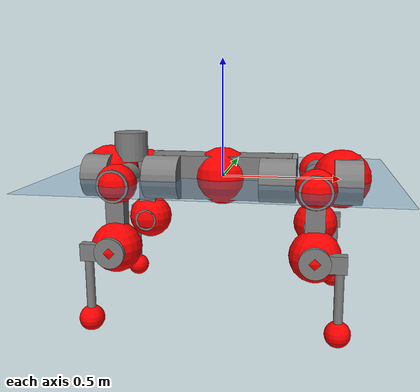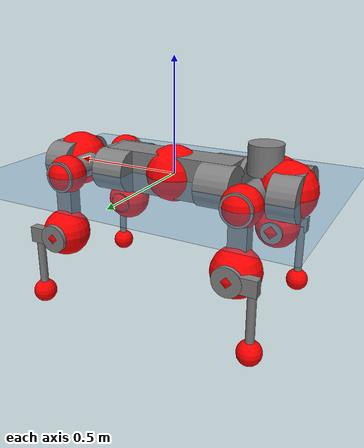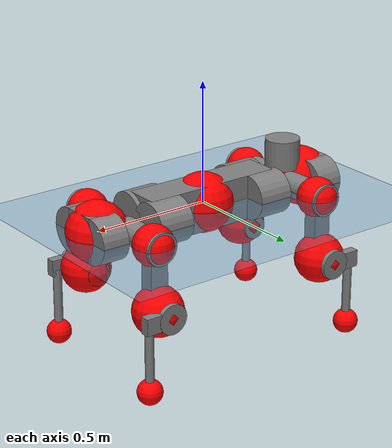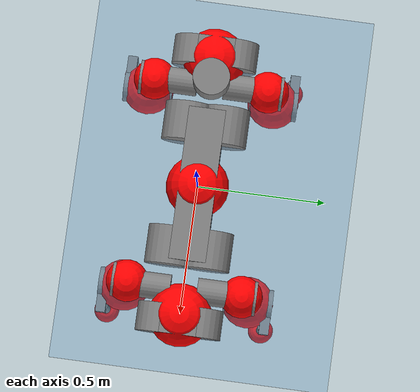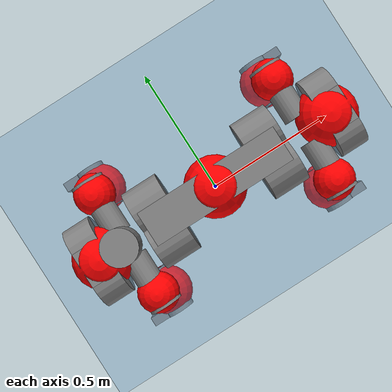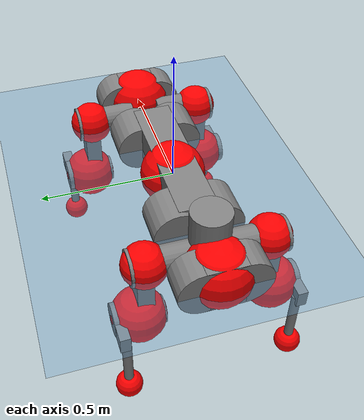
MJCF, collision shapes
<mujoco model="anymal_c">
  <compiler angle="radian" assetdir="assets" balanceinertia="true" inertiafromgeom="false"/>

  <option timestep="0.005" density="1.2" viscosity="2e-05"/>

  <size nkey="1"/>

  <visual>
    <quality shadowsize="8192"/>
    <map shadowclip="0.5"/>
  </visual>

  <default>
    <default class="/">
      <material specular="0" shininess="0.25"/>
      <geom contype="0" conaffinity="0" group="1" solref="-1000 -80"/>
      <site size="0.01 0.005 0.005" group="5"/>
      <general forcelimited="true" forcerange="-80 80" biastype="affine" gainprm="80" biasprm="0 -80 -2"/>
      <default class="anymal_c">
        <joint armature="0.01" damping="0.01" frictionloss="0.1"/>
        <default class="visual">
          <geom type="mesh" group="2"/>
          <default class="visual_zflip"/>
        </default>
        <default class="collision">
          <geom type="cylinder" group="3"/>
          <default class="foot">
            <geom size="0.03 0 0" type="sphere" condim="6" priority="1" friction="0.8 0.02 0.01" solimp="0.015 1 0.03"/>
          </default>
        </default>
      </default>
      <default class="reward_collision_sphere">
        <geom group="5" rgba="1 0 0 1"/>
      </default>
    </default>
  </default>

  <asset>
    <texture type="skybox" colorspace="auto" name="//unnamed_texture_0" builtin="gradient" rgb1="0.95 0.95 0.95" rgb2="0.95 0.95 0.95" width="100" height="600"/>
    <texture type="2d" colorspace="auto" name="texplane" builtin="checker" rgb1="0.345 0.575 0.748" rgb2="0.345 0.575 0.748" markrgb="1 1 1" width="512" height="512"/>
    <texture type="2d" colorspace="linear" name="base" file="base.png"/>
    <texture type="2d" colorspace="linear" name="top_shell" file="top_shell.png"/>
    <texture type="2d" colorspace="linear" name="bottom_shell" file="bottom_shell.png"/>
    <texture type="2d" colorspace="linear" name="remote" file="remote.png"/>
    <texture type="2d" colorspace="linear" name="hatch" file="hatch.png"/>
    <texture type="2d" colorspace="linear" name="handle" file="handle.png"/>
    <texture type="2d" colorspace="linear" name="face" file="face.png"/>
    <texture type="2d" colorspace="linear" name="battery" file="battery.png"/>
    <texture type="2d" colorspace="linear" name="lidar_cage" file="lidar_cage.png"/>
    <texture type="2d" colorspace="linear" name="depth_camera" file="depth_camera.png"/>
    <texture type="2d" colorspace="linear" name="wide_angle_camera" file="wide_angle_camera.png"/>
    <texture type="2d" colorspace="linear" name="lidar" file="lidar.png"/>
    <texture type="2d" colorspace="linear" name="drive" file="drive.png"/>
    <texture type="2d" colorspace="linear" name="hip_l" file="hip_l.png"/>
    <texture type="2d" colorspace="linear" name="shank_l" file="shank_l.png"/>
    <texture type="2d" colorspace="linear" name="foot" file="foot.png"/>
    <texture type="2d" colorspace="linear" name="thigh" file="thigh.png"/>
    <texture type="2d" colorspace="linear" name="shank_r" file="shank_r.png"/>
    <texture type="2d" colorspace="linear" name="hip_r" file="hip_r.png"/>
    <material name="MatPlane" class="/" texture="texplane" texuniform="true" texrepeat="2 2" specular="0.9" shininess="0.5"/>
    <material name="black_plastic" class="/" rgba="0.007 0.007 0.007 1"/>
    <material name="green" class="/" rgba="0.052 0.178 0.033 1"/>
    <material name="red" class="/" rgba="0.178 0.006 0.005 1"/>
    <material name="yellow" class="/" rgba="0.178 0.119 0.006 1"/>
    <material name="lwl" class="/" rgba="0.8 0.8 0.8 1"/>
    <material name="base" class="/" texture="base"/>
    <material name="top_shell" class="/" texture="top_shell"/>
    <material name="bottom_shell" class="/" texture="bottom_shell"/>
    <material name="hip_l" class="/" texture="hip_l"/>
    <material name="thigh" class="/" texture="thigh"/>
    <material name="shank_l" class="/" texture="shank_l"/>
    <material name="foot" class="/" texture="foot"/>
    <material name="hip_r" class="/" texture="hip_r"/>
    <material name="shank" class="/" texture="shank_r"/>
    <material name="hatch" class="/" texture="hatch"/>
    <material name="remote" class="/" texture="remote"/>
    <material name="handle" class="/" texture="handle"/>
    <material name="face" class="/" texture="face"/>
    <material name="depth_camera" class="/" texture="depth_camera"/>
    <material name="wide_angle_camera" class="/" texture="wide_angle_camera"/>
    <material name="battery" class="/" texture="battery"/>
    <material name="lidar_cage" class="/" texture="lidar_cage"/>
    <material name="lidar" class="/" texture="lidar"/>
    <material name="drive" class="/" texture="drive"/>
    <mesh name="base_0" class="/" file="base_0.obj"/>
    <mesh name="base_1" class="/" file="base_1.obj"/>
    <mesh name="base_2" class="/" file="base_2.obj"/>
    <mesh name="base_3" class="/" file="base_3.obj"/>
    <mesh name="base_4" class="/" file="base_4.obj"/>
    <mesh name="base_5" class="/" file="base_5.obj"/>
    <mesh name="top_shell" class="/" file="top_shell.obj"/>
    <mesh name="bottom_shell" class="/" file="bottom_shell.obj"/>
    <mesh name="remote" class="/" file="remote.obj"/>
    <mesh name="handle" class="/" file="handle.obj"/>
    <mesh name="face" class="/" file="face.obj"/>
    <mesh name="wide_angle_camera" class="/" file="wide_angle_camera.obj"/>
    <mesh name="depth_camera" class="/" file="depth_camera.obj"/>
    <mesh name="battery" class="/" file="battery.obj"/>
    <mesh name="lidar_cage" class="/" file="lidar_cage.obj"/>
    <mesh name="lidar" class="/" file="lidar.obj"/>
    <mesh name="drive" class="/" file="drive.obj"/>
    <mesh name="hip_l" class="/" file="hip_l.obj"/>
    <mesh name="thigh" class="/" file="thigh.obj"/>
    <mesh name="shank_l" class="/" file="shank_l.obj"/>
    <mesh name="foot" class="/" file="foot.obj"/>
    <mesh name="hip_r" class="/" file="hip_r.obj"/>
    <mesh name="hatch" class="/" file="hatch.obj"/>
    <mesh name="shank_r" class="/" file="shank_r.obj"/>
  </asset>

  <worldbody>
    <geom name="floor" class="/" size="100 100 0.125" type="plane" group="0" material="MatPlane"/>
    <light name="toplight_shadow" class="/" pos="0 0 5" dir="0.0990148 0.0990148 -0.990148" type="directional" ambient="0.04 0.04 0.04" diffuse="0.55 0.55 0.55" specular="0.12 0.12 0.12"/>
    <light name="toplight_fill" class="/" pos="0 0 5" dir="0.0990148 0.0990148 -0.990148" type="directional" castshadow="false" ambient="0.04 0.04 0.04" diffuse="0.3 0.3 0.3" specular="0.08 0.08 0.08"/>
    <body name="trunk" childclass="anymal_c" pos="0.000148036 3.39347e-05 0.00196601" quat="1 -0.000366635 -0.000213666 6.16918e-05">
      <inertial pos="0.00415768 -0.00545317 0.0424656" quat="0.501036 0.500306 0.499505 0.499151" mass="21.3546" diaginertia="1.08406 0.845098 0.129575"/>
      <joint name="//unnamed_joint_0" type="free" armature="0" damping="0" frictionloss="0"/>
      <geom name="//unnamed_geom_1" class="visual" material="green" mesh="base_0"/>
      <geom name="//unnamed_geom_2" class="visual" material="yellow" mesh="base_1"/>
      <geom name="//unnamed_geom_3" class="visual" material="red" mesh="base_2"/>
      <geom name="//unnamed_geom_4" class="visual" material="black_plastic" mesh="base_3"/>
      <geom name="//unnamed_geom_5" class="visual" material="lwl" mesh="base_4"/>
      <geom name="//unnamed_geom_6" class="visual" material="base" mesh="base_5"/>
      <geom name="trunk_1" class="collision" size="0.29849 0.0720494 0.0926349" type="box"/>
      <geom name="trunk_2" class="collision" size="0.0926349 0.0746226" pos="0.244467 0.0741092 0" quat="0.707107 0 0.707107 0"/>
      <geom name="trunk_3" class="collision" size="0.0926349 0.0746226" pos="-0.244467 0.0741092 0" quat="0.707107 0 0.707107 0"/>
      <geom name="trunk_4" class="collision" size="0.0926349 0.0746226" pos="0.244467 -0.0741092 0" quat="0.707107 0 0.707107 0"/>
      <geom name="trunk_5" class="collision" size="0.0926349 0.0746226" pos="-0.244467 -0.0741092 0" quat="0.707107 0 0.707107 0"/>
      <geom name="//unnamed_geom_12" class="visual" material="top_shell" mesh="top_shell"/>
      <geom name="//unnamed_geom_13" class="visual" material="bottom_shell" mesh="bottom_shell"/>
      <geom name="//unnamed_geom_14" class="visual" material="remote" mesh="remote"/>
      <geom name="//unnamed_geom_15" class="visual" material="handle" mesh="handle"/>
      <geom name="//unnamed_geom_16" class="visual" pos="0.465891 0 0" quat="1 0 0 0" material="face" mesh="face"/>
      <geom name="trunk_6" class="collision" size="0.0566102 0.0720494 0.0926349" pos="0.527711 0 0" type="box"/>
      <geom name="//unnamed_geom_18" class="collision" size="0.0926349 0.0566102" pos="0.527711 0.0741092 0" quat="0.707107 0 0.707107 0"/>
      <geom name="//unnamed_geom_19" class="collision" size="0.0926349 0.0566102" pos="0.527711 -0.0741092 0" quat="0.707107 0 0.707107 0"/>
      <geom name="//unnamed_geom_20" class="visual" pos="0.518878 0 -0.024767" quat="0.965926 0 0.258819 0" material="depth_camera" mesh="depth_camera"/>
      <geom name="//unnamed_geom_21" class="visual" pos="0.576604 0 0.01355" material="wide_angle_camera" mesh="wide_angle_camera"/>
      <geom name="//unnamed_geom_22" class="visual_zflip" pos="-0.465891 0 0" quat="0 0 0 1" material="face" mesh="face"/>
      <geom name="trunk_7" class="collision" size="0.0566102 0.0720494 0.0926349" pos="-0.527711 0 0" quat="0 0 0 1" type="box"/>
      <geom name="//unnamed_geom_24" class="collision" size="0.0926349 0.0566102" pos="-0.527711 -0.0741092 0" quat="0 -0.707107 0 0.707107"/>
      <geom name="//unnamed_geom_25" class="collision" size="0.0926349 0.0566102" pos="-0.527711 0.0741092 0" quat="0 -0.707107 0 0.707107"/>
      <geom name="//unnamed_geom_26" class="visual" pos="-0.518878 0 -0.024767" quat="0 -0.258819 0 0.965926" material="depth_camera" mesh="depth_camera"/>
      <geom name="//unnamed_geom_27" class="visual_zflip" pos="-0.576604 0 0.01355" quat="0 0 0 1" material="wide_angle_camera" mesh="wide_angle_camera"/>
      <geom name="//unnamed_geom_28" class="visual" material="battery" mesh="battery"/>
      <geom name="//unnamed_geom_29" class="visual" pos="0 0.0800827 0.0279576" quat="0.683013 -0.183013 0.183013 0.683013" material="depth_camera" mesh="depth_camera"/>
      <geom name="//unnamed_geom_30" class="visual" pos="0 -0.0800827 0.0279576" quat="0.683013 0.183013 0.183013 -0.683013" material="depth_camera" mesh="depth_camera"/>
      <geom name="//unnamed_geom_31" class="visual" pos="-0.40913 0 0.0665281" quat="1 0 0 0" material="lidar_cage" mesh="lidar_cage"/>
      <geom name="trunk_8" class="collision" size="0.0720494 0.0617566" pos="-0.40913 0 0.120837"/>
      <geom name="//unnamed_geom_33" class="visual" pos="-0.40913 -2.56474e-05 0.128711" quat="0.707107 0 0 -0.707107" material="lidar" mesh="lidar"/>
      <geom name="//unnamed_geom_34" class="visual" pos="0.337083 0.110051 2.6489e-09" quat="0.258819 0.965926 0 0" material="drive" mesh="drive"/>
      <geom name="//unnamed_geom_35" class="visual" pos="0.337083 -0.110051 -2.6489e-09" quat="0.258819 -0.965926 0 0" material="drive" mesh="drive"/>
      <geom name="//unnamed_geom_36" class="visual" pos="-0.337083 0.110051 -2.6489e-09" quat="0 0 0.965926 -0.258819" material="drive" mesh="drive"/>
      <geom name="//unnamed_geom_37" class="visual" pos="-0.337083 -0.110051 2.6489e-09" quat="0 0 -0.965926 -0.258819" material="drive" mesh="drive"/>
      <geom name="//unnamed_geom_38" class="visual" pos="0.130382 0 0.0660755" quat="1 0 0 0" material="hatch" mesh="hatch"/>
      <geom name="//unnamed_geom_39" class="reward_collision_sphere" size="0.123513"/>
      <geom name="//unnamed_geom_40" class="reward_collision_sphere" size="0.123513" pos="0.505793 0 0"/>
      <geom name="//unnamed_geom_41" class="reward_collision_sphere" size="0.123513" pos="-0.505793 0 0"/>
      <site name="imu" pos="0.287276 0.0101467 0.0483988" size="0.0102928"/>
      <camera name="track" pos="0 -2.11741 0" quat="0.707107 0.707107 0 0" mode="trackcom"/>
      <camera name="ego_camera" pos="0.505793 0 -0.0362058" quat="-0.5 -0.5 0.5 0.5"/>
      <body name="LF_HIP" pos="0.336942 0.111201 0.00241279" quat="0.259531 0.965734 0.000810626 0.000108072">
        <inertial pos="0.0676532 -0.0165336 -0.00745158" quat="-0.131361 0.711735 -0.14512 0.674624" mass="2.88255" diaginertia="0.0103029 0.00639251 0.00194004"/>
        <joint name="LF_HAA" pos="0 0 0" axis="0.999989 -0.00220482 0.00421328" range="-0.735502 0.477286" armature="0.00981169" damping="0.00691537" frictionloss="0.120986"/>
        <geom name="//unnamed_geom_42" class="visual" pos="0 0.000155823 -2.55938e-05" quat="0.258819 -0.965926 0 0" material="hip_l" mesh="hip_l"/>
        <geom name="//unnamed_geom_43" class="visual" pos="0.0673267 -0.0806665 -0.045437" quat="0.183013 -0.683013 0.683013 0.183013" material="drive" mesh="drive"/>
        <geom name="//unnamed_geom_44" class="collision" size="0.0514638 0.0720494" pos="0.0673267 -0.0126619 -0.00625002" quat="-0.353553 -0.612372 0.612372 -0.353553"/>
        <body name="LF_THIGH" pos="0.0678699 -0.079609 -0.0375783" quat="0.183148 -0.683297 0.682585 0.18341">
          <inertial pos="0.0341315 0.000604649 -0.222212" quat="0.992964 -0.0105986 -0.0826662 0.0841275" mass="3.62576" diaginertia="0.0535089 0.0404461 0.00288701"/>
          <joint name="LF_HFE" pos="0 0 0" axis="0.999997 0.00216356 -0.000892491" range="-3.11415 3.15568" armature="0.0112196" damping="0.0095703" frictionloss="0.113563"/>
          <geom name="//unnamed_geom_45" class="visual" pos="0.00129885 2.04668e-06 0" quat="0.707107 0 0 -0.707107" material="thigh" mesh="thigh"/>
          <geom name="//unnamed_geom_46" class="collision" size="0.066903 0.0411711" pos="0.0449594 0 0" quat="0.5 0.5 -0.5 -0.5"/>
          <geom name="//unnamed_geom_47" class="collision" size="0.0385979 0.0308783 0.145451" pos="0.0337195 0 -0.12791" quat="0.707107 0 0 -0.707107" type="box"/>
          <geom name="//unnamed_geom_48" class="visual" pos="0.112736 0 -0.257966" quat="1 0 0 0" material="drive" mesh="drive"/>
          <geom name="//unnamed_geom_49" class="collision" size="0.0514638 0.0720494" pos="0.0340567 0 -0.257966" quat="0.707107 0 0.707107 0"/>
          <geom name="//unnamed_geom_50" class="reward_collision_sphere" size="0.0823422" pos="0.0280996 0 0"/>
          <body name="LF_SHANK" pos="0.112075 -0.00175874 -0.260426" quat="0.999997 0.0014467 0.0011075 0.0016976">
            <inertial pos="0.00447778 -0.0645727 -0.0723199" quat="0.992923 -0.115883 -0.00083908 -0.025972" mass="0.649165" diaginertia="0.0181599 0.0127283 0.000714835"/>
            <joint name="LF_KFE" pos="0 0 0" axis="0.999954 -0.00946044 -0.00148523" range="-3.09506 3.09306" armature="0.00997575" damping="0" frictionloss="0.113177"/>
            <geom name="//unnamed_geom_51" class="visual" pos="0.000423527 0.00225827 0" quat="0.707107 0 0 -0.707107" material="shank_l" mesh="shank_l"/>
            <geom name="LF_kfe_act" class="collision" size="0.0617566 0.0205855" pos="0.0224797 0 0" quat="0.5 0.5 -0.5 -0.5"/>
            <geom name="//unnamed_geom_53" class="collision" size="0.0591824 0.0347381 0.0195563" pos="0.0224797 -0.0608743 0" quat="0.5 0.5 -0.5 -0.5" type="box"/>
            <geom name="//unnamed_geom_54" class="visual" pos="0.0146679 -0.0923851 -0.305912" quat="0.382683 0 0 -0.92388" material="foot" mesh="foot"/>
            <geom name="LF_calf" class="collision" size="0.0180123 0.145387" pos="0.014668 -0.0931129 -0.152956" quat="0.707107 0 0 -0.707107"/>
            <geom name="LF_foot" class="foot" size="0.0271898" pos="0.014668 -0.0931129 -0.285546" quat="0.707107 0 0 -0.707107"/>
            <geom name="//unnamed_geom_57" class="reward_collision_sphere" size="0.102928" pos="-0.0561992 0 0"/>
            <geom name="//unnamed_geom_58" class="reward_collision_sphere" size="0.0514638" pos="0.014668 -0.0931129 -0.285546"/>
            <site name="LF_foot" class="foot" pos="0.014668 -0.0931129 -0.285546" quat="0.707107 0 0 -0.707107" size="0.0102928"/>
          </body>
        </body>
      </body>
      <body name="RF_HIP" pos="0.338862 -0.109301 2.40306e-05" quat="0.257413 -0.966301 0.000295594 -0.000699761">
        <inertial pos="0.064364 0.0189688 -0.00998503" quat="0.137341 0.678186 0.12886 0.71035" mass="3.27491" diaginertia="0.0108634 0.00688898 0.00198995"/>
        <joint name="RF_HAA" pos="0 0 0" axis="0.999998 -0.00181784 0.00130016" range="-0.545573 0.817762" armature="0.0101144" damping="0.0191785" frictionloss="0.108907"/>
        <geom name="//unnamed_geom_59" class="visual" pos="0 -0.000155822 -2.55937e-05" quat="0.258819 0.965926 0 0" material="hip_r" mesh="hip_r"/>
        <geom name="//unnamed_geom_60" class="visual" pos="0.0673267 0.0806665 -0.045437" quat="0.183013 0.683013 0.683013 -0.183013" material="drive" mesh="drive"/>
        <geom name="//unnamed_geom_61" class="collision" size="0.0514638 0.0720494" pos="0.0673267 0.0126619 -0.00625002" quat="-0.353553 0.612372 0.612372 0.353553"/>
        <body name="RF_THIGH" pos="0.0610992 0.0762978 -0.0370709" quat="0.182016 0.682795 0.683555 -0.182793">
          <inertial pos="0.0354849 -0.00237476 -0.222302" quat="0.99243 -0.00403636 -0.0826769 0.0907264" mass="3.06589" diaginertia="0.0529139 0.0361381 0.00240268"/>
          <joint name="RF_HFE" pos="0 0 0" axis="0.999658 -0.0256083 0.00524175" stiffness="0.00470429" range="-3.27497 3.23824" armature="0.0105634" damping="0.0228549" frictionloss="0.0914191"/>
          <geom name="//unnamed_geom_62" class="visual" pos="0.00129885 2.04668e-06 0" quat="0.707107 0 0 -0.707107" material="thigh" mesh="thigh"/>
          <geom name="//unnamed_geom_63" class="collision" size="0.066903 0.0411711" pos="0.0449594 0 0" quat="0.5 0.5 0.5 0.5"/>
          <geom name="//unnamed_geom_64" class="collision" size="0.0385979 0.0308783 0.145451" pos="0.0337195 0 -0.12791" quat="0.707107 0 0 0.707107" type="box"/>
          <geom name="//unnamed_geom_65" class="visual" pos="0.112736 0 -0.257966" quat="1 0 0 0" material="drive" mesh="drive"/>
          <geom name="//unnamed_geom_66" class="collision" size="0.0514638 0.0720494" pos="0.0340567 0 -0.257966" quat="0.707107 0 0.707107 0"/>
          <geom name="//unnamed_geom_67" class="reward_collision_sphere" size="0.0823422" pos="0.0280996 0 0"/>
          <body name="RF_SHANK" pos="0.107416 0.00267177 -0.258051" quat="0.999999 0.00109561 0.000124744 0.000282391">
            <inertial pos="0.00500792 0.0626214 -0.0790601" quat="0.992764 0.117836 -0.00941105 0.0211221" mass="0.692643" diaginertia="0.0179308 0.0120817 0.0006691"/>
            <joint name="RF_KFE" pos="0 0 0" axis="0.999409 -0.0312982 0.0142274" range="-3.09841 3.20913" armature="0.0099711" damping="0.0211029" frictionloss="0.13767"/>
            <geom name="//unnamed_geom_68" class="visual" pos="0.000423524 -0.00225826 0" quat="0.707107 0 0 0.707107" material="shank" mesh="shank_r"/>
            <geom name="RF_kfe_act" class="collision" size="0.0617566 0.0205855" pos="0.0224797 0 0" quat="0.5 0.5 0.5 0.5"/>
            <geom name="//unnamed_geom_70" class="collision" size="0.0591824 0.0347381 0.0195563" pos="0.0224797 0.0608743 0" quat="0.5 0.5 0.5 0.5" type="box"/>
            <geom name="//unnamed_geom_71" class="visual" pos="0.0146681 0.0923851 -0.305912" quat="0.382683 0 0 0.92388" material="foot" mesh="foot"/>
            <geom name="RF_calf" class="collision" size="0.0180123 0.145387" pos="0.014668 0.0931129 -0.152956" quat="0.707107 0 0 0.707107"/>
            <geom name="RF_foot" class="foot" size="0.0316499" pos="0.014668 0.0931129 -0.285546" quat="0.707107 0 0 0.707107"/>
            <geom name="//unnamed_geom_74" class="reward_collision_sphere" size="0.102928" pos="-0.0561992 0 0"/>
            <geom name="//unnamed_geom_75" class="reward_collision_sphere" size="0.0514638" pos="0.014668 0.0931129 -0.285546"/>
            <site name="RF_foot" class="foot" pos="0.014668 0.0931129 -0.285546" quat="0.707107 0 0 0.707107" size="0.0102928"/>
          </body>
        </body>
      </body>
      <body name="LH_HIP" pos="-0.338841 0.107898 0.00218779" quat="-0.000905715 0.000114613 0.965902 -0.258908">
        <inertial pos="0.0635672 0.0198498 -0.00522655" quat="0.125382 0.704951 0.129162 0.686032" mass="3.29133" diaginertia="0.0106925 0.00642075 0.00197695"/>
        <joint name="LH_HAA" pos="0 0 0" axis="0.999946 0.00138832 -0.0103439" stiffness="0.012764" range="-0.44784 0.715229" armature="0.00993511" damping="0.0131676" frictionloss="0.103224"/>
        <geom name="//unnamed_geom_76" class="visual" pos="0 -0.000155822 -2.55937e-05" quat="-0.258819 -0.965926 0 0" material="hip_r" mesh="hip_r"/>
        <geom name="//unnamed_geom_77" class="visual" pos="0.0673267 0.0806665 -0.045437" quat="0.183013 0.683013 0.683013 -0.183013" material="drive" mesh="drive"/>
        <geom name="//unnamed_geom_78" class="collision" size="0.0514638 0.0720494" pos="0.0673267 0.0126619 -0.00625002" quat="-0.353553 0.612372 0.612372 0.353553"/>
        <body name="LH_THIGH" pos="0.0667236 0.0806158 -0.0376637" quat="0.183006 0.683016 0.683011 -0.183012">
          <inertial pos="0.033107 0.00186244 -0.222536" quat="0.992981 -0.00623048 -0.0834459 0.0835856" mass="3.25997" diaginertia="0.0493146 0.0373802 0.00238944"/>
          <joint name="LH_HFE" pos="0 0 0" axis="0.999997 -0.0024044 0.000496943" range="-3.13327 3.1265" armature="0.0102823" damping="0.000399027" frictionloss="0.10139"/>
          <geom name="//unnamed_geom_79" class="visual" pos="0.00129885 2.04668e-06 0" quat="0.707107 0 0 -0.707107" material="thigh" mesh="thigh"/>
          <geom name="//unnamed_geom_80" class="collision" size="0.066903 0.0411711" pos="0.0449594 0 0" quat="0.5 0.5 -0.5 -0.5"/>
          <geom name="//unnamed_geom_81" class="collision" size="0.0385979 0.0308783 0.145451" pos="0.0337195 0 -0.12791" quat="0.707107 0 0 -0.707107" type="box"/>
          <geom name="//unnamed_geom_82" class="visual" pos="0.112736 0 -0.257966" quat="1 0 0 0" material="drive" mesh="drive"/>
          <geom name="//unnamed_geom_83" class="collision" size="0.0514638 0.0720494" pos="0.0340567 0 -0.257966" quat="0.707107 0 0.707107 0"/>
          <geom name="//unnamed_geom_84" class="reward_collision_sphere" size="0.0823422" pos="0.0280996 0 0"/>
          <body name="LH_SHANK" pos="0.110191 -0.00101146 -0.257082" quat="0.999999 0.000583608 0.000481721 0.0015092">
            <inertial pos="0.0034045 0.0631948 -0.0714004" quat="0.992794 0.117003 -0.00155479 0.0258287" mass="0.613824" diaginertia="0.016192 0.0104988 0.000561399"/>
            <joint name="LH_KFE" pos="0 0 0" axis="0.999986 -0.0039827 0.00344742" range="-3.12993 3.28758" armature="0.0108569" damping="0" frictionloss="0.104644"/>
            <geom name="//unnamed_geom_85" class="visual" pos="0.000423524 -0.00225826 0" quat="-0.707107 0 0 -0.707107" material="shank" mesh="shank_r"/>
            <geom name="LH_kfe_act" class="collision" size="0.0617566 0.0205855" pos="0.0224797 0 0" quat="0.5 0.5 -0.5 -0.5"/>
            <geom name="//unnamed_geom_87" class="collision" size="0.0591824 0.0347381 0.0195563" pos="0.0224797 0.0608743 0" quat="0.5 0.5 -0.5 -0.5" type="box"/>
            <geom name="//unnamed_geom_88" class="visual" pos="0.0146681 0.0923851 -0.305912" quat="-0.382683 0 0 -0.92388" material="foot" mesh="foot"/>
            <geom name="LH_calf" class="collision" size="0.0180123 0.145387" pos="0.014668 0.0931129 -0.152956" quat="0.707107 0 0 -0.707107"/>
            <geom name="LH_foot" class="foot" size="0.0374509" pos="0.014668 0.0931129 -0.285546" quat="0.707107 0 0 -0.707107"/>
            <geom name="//unnamed_geom_91" class="reward_collision_sphere" size="0.102928" pos="-0.0561992 0 0"/>
            <geom name="//unnamed_geom_92" class="reward_collision_sphere" size="0.0514638" pos="0.014668 0.0931129 -0.285546"/>
            <site name="LH_foot" class="foot" pos="0.014668 0.0931129 -0.285546" quat="0.707107 0 0 -0.707107" size="0.0102928"/>
          </body>
        </body>
      </body>
      <body name="RH_HIP" pos="-0.336541 -0.113126 0.00394986" quat="-0.00189444 -0.000492559 -0.96601 -0.258497">
        <inertial pos="0.0659709 -0.0159465 -0.00827605" quat="-0.15224 0.697667 -0.11885 0.689898" mass="3.00389" diaginertia="0.0105501 0.00663014 0.00204226"/>
        <joint name="RH_HAA" pos="0 0 0" axis="0.999965 -0.00459459 0.00700939" range="-0.64453 0.536376" armature="0.0126186" damping="0.0121079" frictionloss="0.0976781"/>
        <geom name="//unnamed_geom_93" class="visual" pos="0 0.000155823 -2.55938e-05" quat="-0.258819 0.965926 0 0" material="hip_l" mesh="hip_l"/>
        <geom name="//unnamed_geom_94" class="visual" pos="0.0673267 -0.0806665 -0.045437" quat="-0.183013 0.683013 -0.683013 -0.183013" material="drive" mesh="drive"/>
        <geom name="//unnamed_geom_95" class="collision" size="0.0514638 0.0720494" pos="0.0673267 -0.0126619 -0.00625002" quat="0.353553 0.612372 -0.612372 0.353553"/>
        <body name="RH_THIGH" pos="0.0648753 -0.076566 -0.0322566" quat="-0.183152 0.682749 -0.683346 -0.182614">
          <inertial pos="0.0350449 -0.00693881 -0.222809" quat="0.993514 -0.0034341 -0.0880139 0.0719162" mass="3.67292" diaginertia="0.0578909 0.0429199 0.00269308"/>
          <joint name="RH_HFE" pos="0 0 0" axis="0.999981 -0.00180685 -0.00585677" range="-3.12157 3.24085" armature="0.00648943" damping="0.00396113" frictionloss="0.112082"/>
          <geom name="//unnamed_geom_96" class="visual" pos="0.00129885 2.04668e-06 0" quat="0.707107 0 0 -0.707107" material="thigh" mesh="thigh"/>
          <geom name="//unnamed_geom_97" class="collision" size="0.066903 0.0411711" pos="0.0449594 0 0" quat="0.5 0.5 0.5 0.5"/>
          <geom name="//unnamed_geom_98" class="collision" size="0.0385979 0.0308783 0.145451" pos="0.0337195 0 -0.12791" quat="0.707107 0 0 0.707107" type="box"/>
          <geom name="//unnamed_geom_99" class="visual" pos="0.112736 0 -0.257966" quat="1 0 0 0" material="drive" mesh="drive"/>
          <geom name="//unnamed_geom_100" class="collision" size="0.0514638 0.0720494" pos="0.0340567 0 -0.257966" quat="0.707107 0 0.707107 0"/>
          <geom name="//unnamed_geom_101" class="reward_collision_sphere" size="0.0823422" pos="0.0280996 0 0"/>
          <body name="RH_SHANK" pos="0.11611 0.00277556 -0.254742" quat="0.999999 -0.000282971 -0.00107575 0.000192606">
            <inertial pos="0.00639138 -0.0646103 -0.0723289" quat="0.995698 -0.0921394 -0.00243894 -0.00946564" mass="0.677537" diaginertia="0.0187288 0.0119819 0.000619209"/>
            <joint name="RH_KFE" pos="0 0 0" axis="0.99973 -0.0223013 0.00657641" range="-3.19945 3.05234" armature="0.00968895" damping="0.0108153" frictionloss="0.11491"/>
            <geom name="//unnamed_geom_102" class="visual" pos="0.000423527 0.00225827 0" quat="0.707107 0 0 -0.707107" material="shank_l" mesh="shank_l"/>
            <geom name="RH_kfe_act" class="collision" size="0.0617566 0.0205855" pos="0.0224797 0 0" quat="0.5 0.5 0.5 0.5"/>
            <geom name="//unnamed_geom_104" class="collision" size="0.0591824 0.0347381 0.0195563" pos="0.0224797 -0.0608743 0" quat="0.5 0.5 0.5 0.5" type="box"/>
            <geom name="//unnamed_geom_105" class="visual" pos="0.0146679 -0.0923851 -0.305912" quat="0.382683 0 0 -0.92388" material="foot" mesh="foot"/>
            <geom name="RH_calf" class="collision" size="0.0180123 0.145387" pos="0.014668 -0.0931129 -0.152956" quat="0.707107 0 0 0.707107"/>
            <geom name="RH_foot" class="foot" size="0.0387722" pos="0.014668 -0.0931129 -0.285546" quat="0.707107 0 0 0.707107"/>
            <geom name="//unnamed_geom_108" class="reward_collision_sphere" size="0.102928" pos="-0.0561992 0 0"/>
            <geom name="//unnamed_geom_109" class="reward_collision_sphere" size="0.0514638" pos="0.014668 -0.0931129 -0.285546"/>
            <site name="RH_foot" class="foot" pos="0.014668 -0.0931129 -0.285546" quat="0.707107 0 0 0.707107" size="0.0102928"/>
          </body>
        </body>
      </body>
    </body>
  </worldbody>

  <contact>
    <pair class="/" geom1="floor" geom2="LF_foot" name="//unnamed_contact_0"/>
    <pair class="/" geom1="floor" geom2="RF_foot" name="//unnamed_contact_1"/>
    <pair class="/" geom1="floor" geom2="LH_foot" name="//unnamed_contact_2"/>
    <pair class="/" geom1="floor" geom2="RH_foot" name="//unnamed_contact_3"/>
  </contact>

  <actuator>
    <general name="LF_HAA" class="/" joint="LF_HAA" forcerange="-83.5357 83.5357" gainprm="71.9044" biasprm="0 -71.9044 -2.091"/>
    <general name="LF_HFE" class="/" joint="LF_HFE" forcerange="-102.849 102.849" gainprm="71.9044" biasprm="0 -71.9044 -2.091"/>
    <general name="LF_KFE" class="/" joint="LF_KFE" forcerange="-88.6705 88.6705" gainprm="71.9044" biasprm="0 -71.9044 -2.091"/>
    <general name="RF_HAA" class="/" joint="RF_HAA" forcerange="-77.127 77.127" gainprm="71.9044" biasprm="0 -71.9044 -2.091"/>
    <general name="RF_HFE" class="/" joint="RF_HFE" forcerange="-87.5496 87.5496" gainprm="71.9044" biasprm="0 -71.9044 -2.091"/>
    <general name="RF_KFE" class="/" joint="RF_KFE" forcerange="-80.7764 80.7764" gainprm="71.9044" biasprm="0 -71.9044 -2.091"/>
    <general name="LH_HAA" class="/" joint="LH_HAA" forcerange="-78.1127 78.1127" gainprm="71.9044" biasprm="0 -71.9044 -2.091"/>
    <general name="LH_HFE" class="/" joint="LH_HFE" forcerange="-82.3437 82.3437" gainprm="71.9044" biasprm="0 -71.9044 -2.091"/>
    <general name="LH_KFE" class="/" joint="LH_KFE" forcerange="-82.48 82.48" gainprm="71.9044" biasprm="0 -71.9044 -2.091"/>
    <general name="RH_HAA" class="/" joint="RH_HAA" forcerange="-102.141 102.141" gainprm="71.9044" biasprm="0 -71.9044 -2.091"/>
    <general name="RH_HFE" class="/" joint="RH_HFE" forcerange="-75.7841 75.7841" gainprm="71.9044" biasprm="0 -71.9044 -2.091"/>
    <general name="RH_KFE" class="/" joint="RH_KFE" forcerange="-75.6828 75.6828" gainprm="71.9044" biasprm="0 -71.9044 -2.091"/>
  </actuator>

  <sensor>
    <gyro site="imu" name="imu_angular_velocity"/>
    <velocimeter site="imu" name="imu_linear_velocity"/>
    <framelinvel objtype="site" objname="LF_foot" name="LF_foot_global_linear_velocity"/>
    <framelinvel objtype="site" objname="RF_foot" name="RF_foot_global_linear_velocity"/>
    <framelinvel objtype="site" objname="LH_foot" name="LH_foot_global_linear_velocity"/>
    <framelinvel objtype="site" objname="RH_foot" name="RH_foot_global_linear_velocity"/>
  </sensor>

  <keyframe>
    <key name="home" qpos="0 0 0.55 1 0 0 0 0 0.4 -0.8 0 -0.4 0.8 0 -0.4 0.8 0 0.4 -0.8"/>
  </keyframe>
</mujoco>
